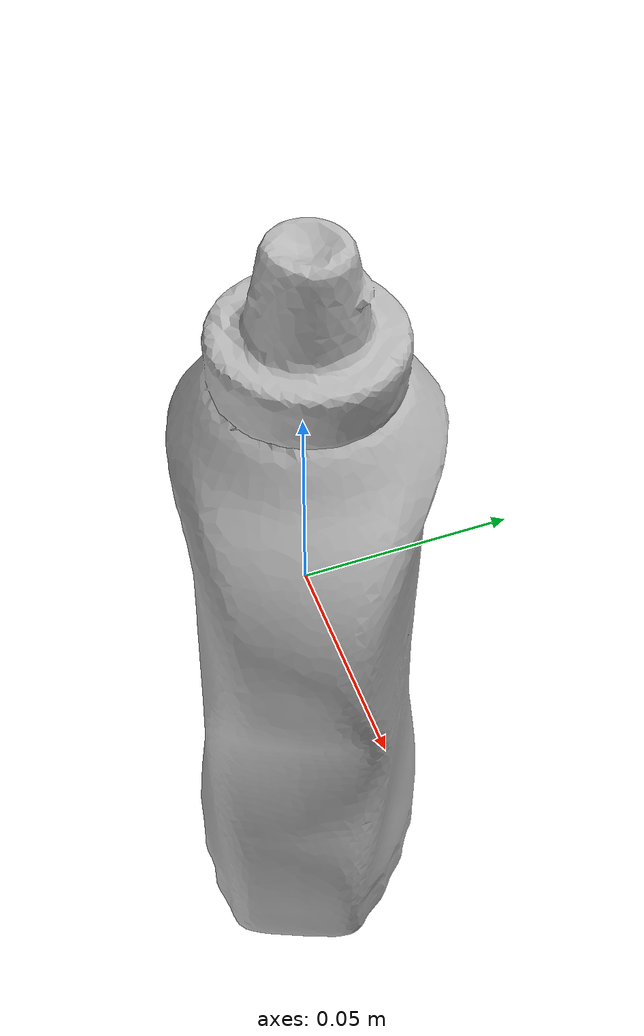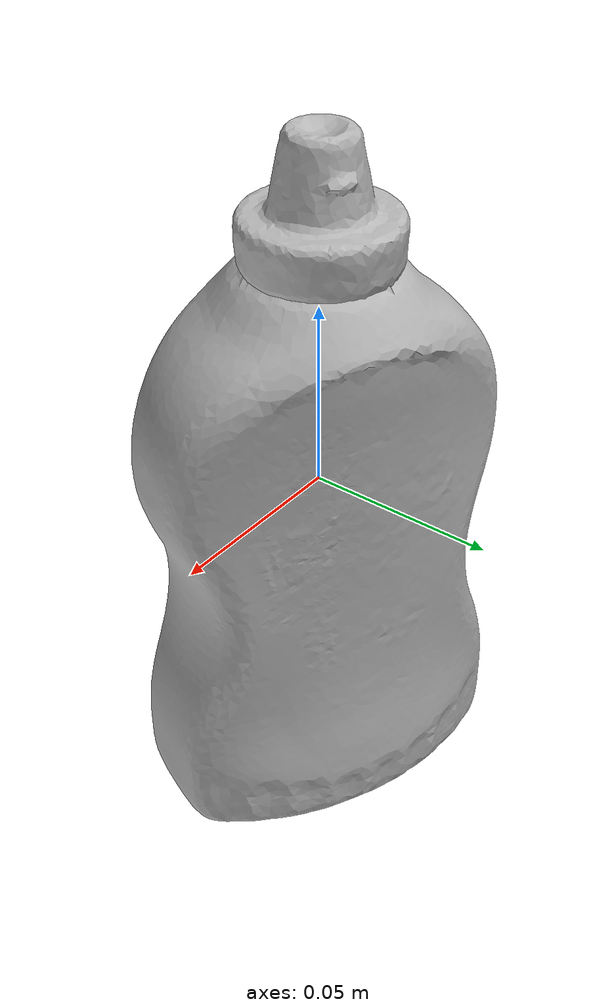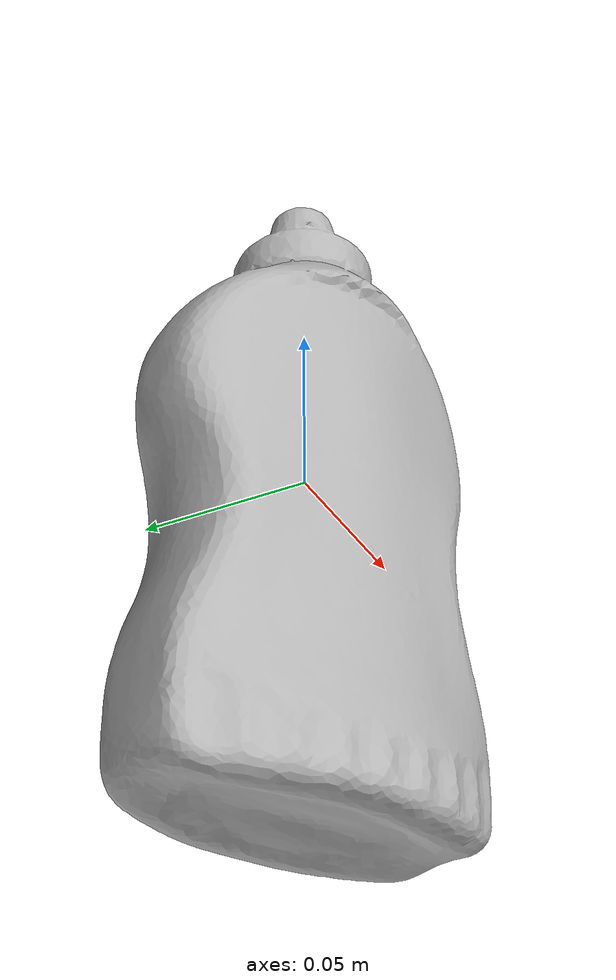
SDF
<?xml version="1.0" ?>
<sdf version="1.7">
<!--
This SDF file was automatically generated using a template modified
and authored by Jinjian Li. The moment of interia is not supposed to be changed.
-->
    <model name="obj_000005">
      <pose>0.0 0.0 0.0 0.0 0.0 0.0</pose>
      <link name="link">
        <inertial>
          <inertia>
           <ixx>0.0022289633578885565</ixx>
           <ixy>0.00011533667145581714</ixy>
           <ixz>-7.5515860118407e-06</ixz>
           <iyy>0.0024530699689111835</iyy>
           <iyz>-1.0724101610575681e-05</iyz>
           <izz>0.0006433153045132259</izz>
          </inertia>
          <mass>0.9175364151656218</mass>
        </inertial>
        <collision name="collision">
          <geometry>
            <mesh>
             <uri>obj_000005.obj</uri>
             <scale>1 1 1</scale>
            </mesh>
          </geometry>
        </collision>

        <visual name="visual">
          <geometry>
            <mesh>
             <uri>obj_000005.obj</uri>
             <scale>1 1 1</scale>
            </mesh>
          </geometry>
        </visual>
      </link>
    </model>
</sdf>
